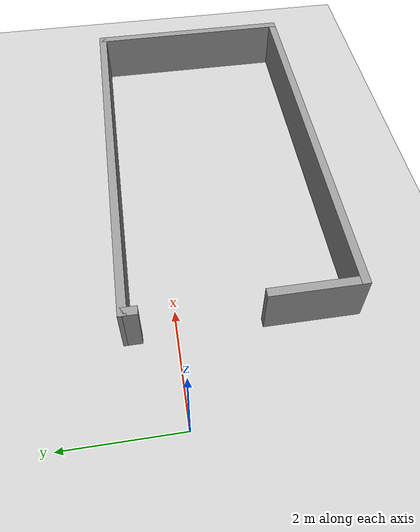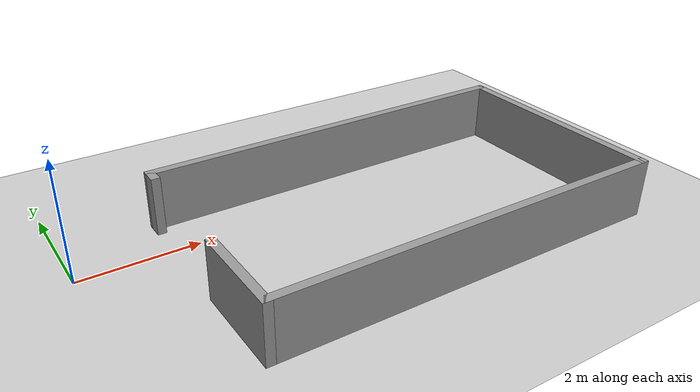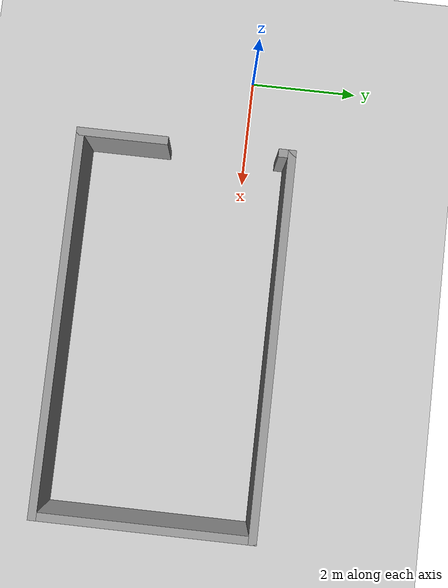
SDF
<sdf version="1.7">
 <world name="default">
  <model name="ground_plane">
   <static>1</static>
   <link name="link">
    <collision name="collision">
     <geometry><plane><normal>0 0 1</normal><size>100 100</size></plane></geometry>
     <surface>
      <contact><collide_bitmask>65535</collide_bitmask></contact>
      <friction><ode><mu>100</mu><mu2>50</mu2></ode></friction>
     </surface>
    </collision>
    <visual name="visual">
     <cast_shadows>0</cast_shadows>
     <geometry><plane><normal>0 0 1</normal><size>100 100</size></plane></geometry>
     <material>
      <script><uri>file://media/materials/scripts/gazebo.material</uri><name>Gazebo/Grey</name></script>
     </material>
    </visual>
   </link>
  </model>
  <light name="sun" type="directional">
   <pose>0 0 10 0 -0 0</pose>
   <diffuse>0.8 0.8 0.8 1</diffuse>
   <specular>0.2 0.2 0.2 1</specular>
   <attenuation>
    <range>1000</range>
    <constant>0.9</constant>
    <linear>0.01</linear>
    <quadratic>0.001</quadratic>
   </attenuation>
   <direction>-0.5 0.1 -0.9</direction>
   <spot><inner_angle>0</inner_angle><outer_angle>0</outer_angle><falloff>0</falloff></spot>
  </light>
  <gravity>0 0 -9.8</gravity>
  <magnetic_field>6e-06 2.3e-05 -4.2e-05</magnetic_field>
  <atmosphere type="adiabatic"/>
  <physics type="ode">
   <max_step_size>0.001</max_step_size>
   <real_time_factor>1</real_time_factor>
   <real_time_update_rate>1000</real_time_update_rate>
  </physics>
  <scene><ambient>0.4 0.4 0.4 1</ambient><background>0.7 0.7 0.7 1</background><shadows>1</shadows></scene>
  <spherical_coordinates>
   <surface_model>EARTH_WGS84</surface_model>
   <latitude_deg>0</latitude_deg>
   <longitude_deg>0</longitude_deg>
   <elevation>0</elevation>
   <heading_deg>0</heading_deg>
  </spherical_coordinates>
  <model name="test3">
   <pose>3.74593 -1.08965 0 0 -0 0</pose>
   <link name="Wall_0">
    <collision name="Wall_0_Collision">
     <geometry><box><size>7 0.15 1</size></box></geometry>
     <pose>0 0 0.5 0 -0 0</pose>
    </collision>
    <visual name="Wall_0_Visual">
     <pose>0 0 0.5 0 -0 0</pose>
     <geometry><box><size>7 0.15 1</size></box></geometry>
     <material>
      <script><uri>file://media/materials/scripts/gazebo.material</uri><name>Gazebo/Grey</name></script>
      <ambient>1 1 1 1</ambient>
     </material>
     <meta><layer>0</layer></meta>
    </visual>
    <pose>1.26593 -1.92499 0 0 -0 0</pose>
   </link>
   <link name="Wall_1">
    <collision name="Wall_1_Collision">
     <geometry><box><size>4 0.15 1</size></box></geometry>
     <pose>0 0 0.5 0 -0 0</pose>
    </collision>
    <visual name="Wall_1_Visual">
     <pose>0 0 0.5 0 -0 0</pose>
     <geometry><box><size>4 0.15 1</size></box></geometry>
     <material>
      <script><uri>file://media/materials/scripts/gazebo.material</uri><name>Gazebo/Grey</name></script>
      <ambient>1 1 1 1</ambient>
     </material>
     <meta><layer>0</layer></meta>
    </visual>
    <pose>4.69093 1.1e-05 0 0 -0 1.5708</pose>
   </link>
   <link name="Wall_2">
    <collision name="Wall_2_Collision">
     <geometry><box><size>7 0.15 1</size></box></geometry>
     <pose>0 0 0.5 0 -0 0</pose>
    </collision>
    <visual name="Wall_2_Visual">
     <pose>0 0 0.5 0 -0 0</pose>
     <geometry><box><size>7 0.15 1</size></box></geometry>
     <material>
      <script><uri>file://media/materials/scripts/gazebo.material</uri><name>Gazebo/Grey</name></script>
      <ambient>1 1 1 1</ambient>
     </material>
     <meta><layer>0</layer></meta>
    </visual>
    <pose>1.26593 1.91801 0 0 -0 -3.13955</pose>
   </link>
   <link name="Wall_3">
    <pose>-2.15907 -0.006989 0 0 -0 -1.5708</pose>
    <visual name="Wall_3_Visual_0">
     <pose>-1.8334 0 0.5 0 -0 0</pose>
     <geometry><box><size>0.319549 0.15 1</size></box></geometry>
     <material>
      <script><uri>file://media/materials/scripts/gazebo.material</uri><name>Gazebo/Grey</name></script>
      <ambient>1 1 1 1</ambient>
     </material>
     <meta><layer>0</layer></meta>
    </visual>
    <collision name="Wall_3_Collision_0">
     <geometry><box><size>0.319549 0.15 1</size></box></geometry>
     <pose>-1.8334 0 0.5 0 -0 0</pose>
    </collision>
    <visual name="Wall_3_Visual_1">
     <pose>1.15978 0 0.5 0 -0 0</pose>
     <geometry><box><size>1.6668 0.15 1</size></box></geometry>
     <material>
      <script><uri>file://media/materials/scripts/gazebo.material</uri><name>Gazebo/Grey</name></script>
      <ambient>1 1 1 1</ambient>
     </material>
     <meta><layer>0</layer></meta>
    </visual>
    <collision name="Wall_3_Collision_1">
     <geometry><box><size>1.6668 0.15 1</size></box></geometry>
     <pose>1.15978 0 0.5 0 -0 0</pose>
    </collision>
   </link>
   <static>1</static>
  </model>
 </world>
</sdf>
